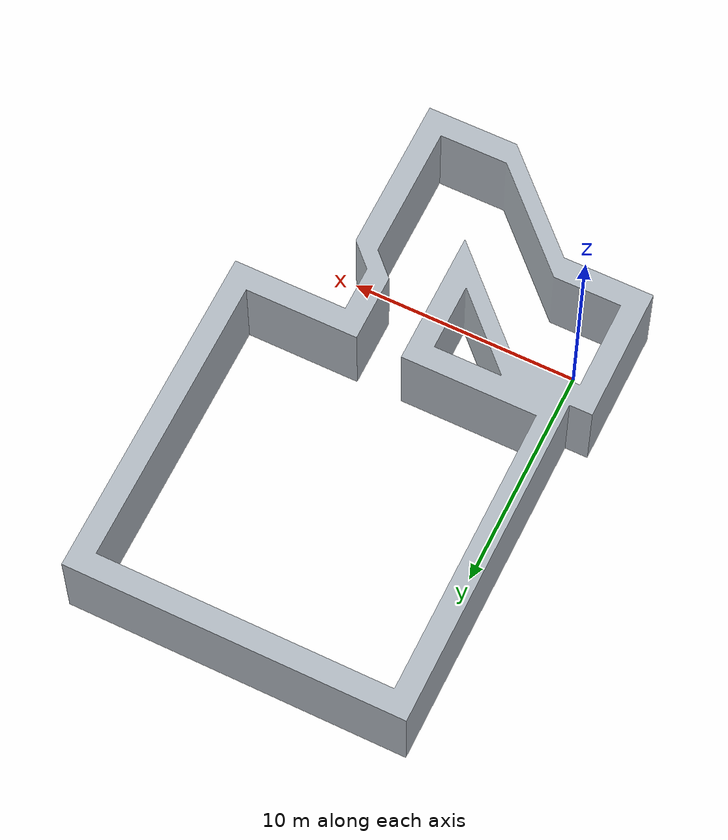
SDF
<?xml version="1.0" ?>
<sdf version="1.6">
  <model name="my_environment">
    <static>true</static>
    <link name="link">
      <visual name="visual">
        <geometry>
          <mesh>
            <uri>model://my_models/mesh/si2025-test.dae</uri>
          </mesh>
        </geometry>
      </visual>
      <collision name="collision">
        <geometry>
          <mesh>
            <uri>model://my_models/mesh/si2025-test.dae</uri>
          </mesh>
        </geometry>
      </collision>
    </link>
  </model>
</sdf>
